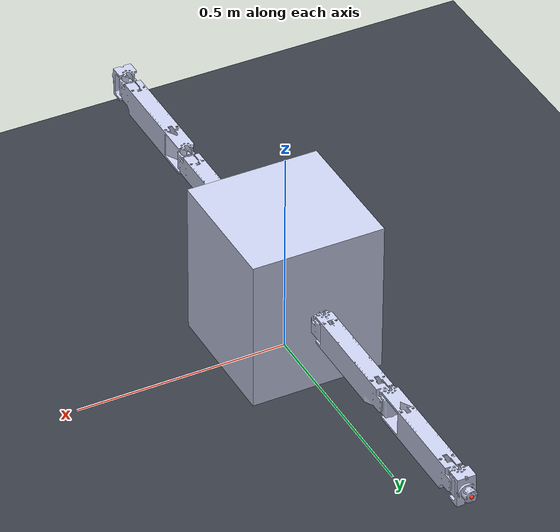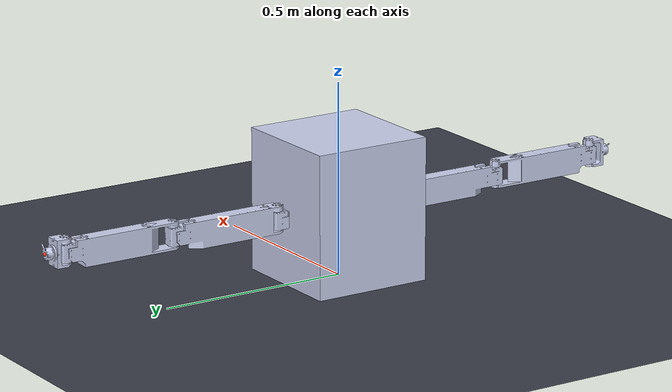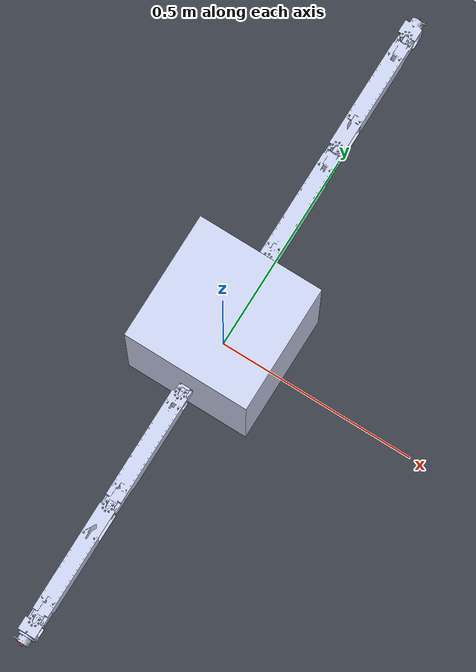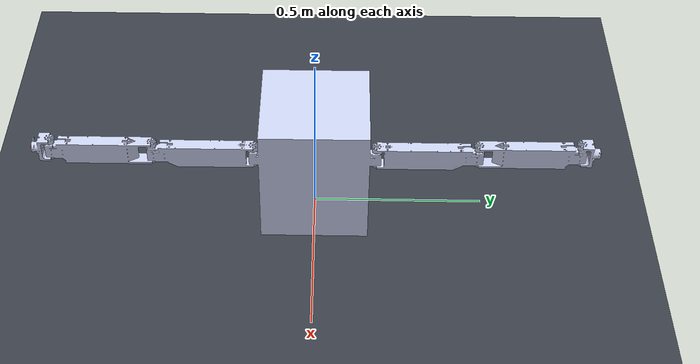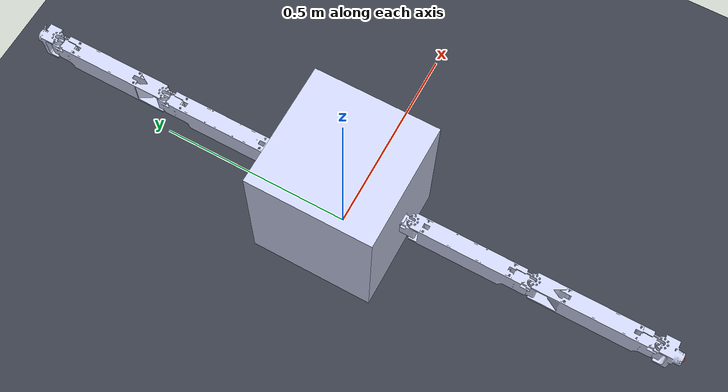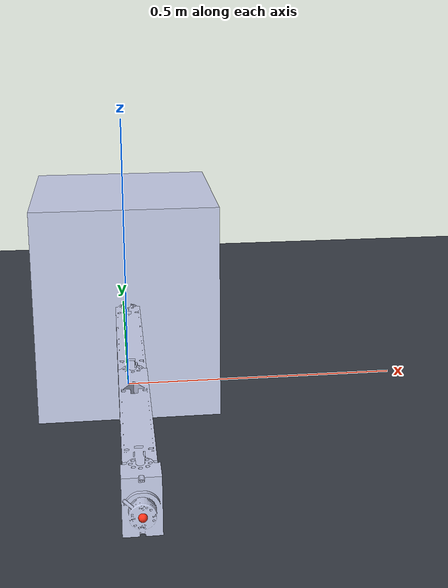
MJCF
<?xml version="1.0" encoding="utf-8"?>
<mujoco model="PFR_Arm2">
  <!-- Generated from PFR_Arm2.urdf. Lengths are in metres and angles in radians. -->
  <compiler angle="radian" meshdir="meshes" autolimits="true"/>
  <option timestep="0.002" gravity="0 0 -9.81" integrator="implicitfast"/>

  <visual>
    <headlight diffuse="0.6 0.6 0.6" ambient="0.3 0.3 0.3" specular="0.1 0.1 0.1"/>
    <rgba haze="0.15 0.25 0.35 1"/>
    <global azimuth="135" elevation="-20"/>
  </visual>

  <default>
    <joint type="hinge" axis="0 0 1" limited="false" damping="0.02" armature="0.001"/>
    <default class="visual">
      <geom type="mesh" material="arm_blue" group="2" contype="0" conaffinity="0"/>
    </default>
    <default class="collision">
      <geom type="mesh" group="3" rgba="0 0 0 0" friction="0.8 0.1 0.1"/>
    </default>
    <motor ctrllimited="false"/>
  </default>

  <asset>
    <material name="arm_blue" rgba="0.7921569 0.8196078 0.9333333 1"/>
    <material name="floor" rgba="0.22 0.24 0.28 1"/>

    <mesh name="base_link_mesh" file="base_link.STL"/>
    <mesh name="Joint1_R_mesh" file="Joint1_R.STL"/>
    <mesh name="Joint2_R_mesh" file="Joint2_R.STL"/>
    <mesh name="Joint3_R_mesh" file="Joint3_R.STL"/>
    <mesh name="Joint1_L_mesh" file="Joint1_L.STL"/>
    <mesh name="Joint2_L_mesh" file="Joint2_L.STL"/>
    <mesh name="Joint3_L_mesh" file="Joint3_L.STL"/>
  </asset>

  <worldbody>
    <light name="top" pos="0 0 2" dir="0 0 -1" diffuse="0.8 0.8 0.8"/>
    <geom name="floor" type="plane" size="1 1 0.05" material="floor"/>
    <camera name="overview" pos="1.5 -1.5 1.1" xyaxes="0.707107 0.707107 0 -0.286039 0.286039 0.91466"/>

    <!-- The URDF has no base joint, so base_link is fixed to the world. -->
    <body name="base_link">
      <inertial pos="2.67023784161503e-17 1.38748955932851e-17 0.185886916570362"
                mass="37.0077126301145"
                fullinertia="0.724473253004157 0.724407746640749 0.602836393608002 -1.86300210027573e-13 -5.02319701611592e-18 3.75870870342342e-21"/>
      <geom name="base_link_visual" class="visual" mesh="base_link_mesh"/>
      <geom name="base_link_collision" class="collision" mesh="base_link_mesh"/>

      <joint name="chaser_x"   type="slide" axis="1 0 0" damping="0" armature="0" limited="false"/>
      <joint name="chaser_y"   type="slide" axis="0 1 0" damping="0" armature="0" limited="false"/>
      <joint name="chaser_yaw" type="hinge" axis="0 0 1" damping="0" armature="0" limited="false"/>

      <body name="Joint1_R" pos="0 -0.18175 0.174">
        <inertial pos="-9.31857326154312e-11 -0.195378541069816 0.00672546665364099"
                  mass="0.410933607210843"
                  fullinertia="0.00175299289156333 0.000195601668420019 0.00169629776467482 -5.89177135842882e-12 1.3984615394458e-12 1.88142895656864e-05"/>
        <joint name="Joint1_R" limited="true" range="-1.57079632679 1.57079632679"/>
        <geom name="Joint1_R_visual" class="visual" mesh="Joint1_R_mesh"/>
        <geom name="Joint1_R_collision" class="collision" mesh="Joint1_R_mesh"/>

        <body name="Joint2_R" pos="0 -0.3 0.00950000000000006">
          <inertial pos="-8.81578836366647e-10 -0.205753132187302 0.00699863753540647"
                    mass="0.374093067317941"
                    fullinertia="0.00161509478193257 0.000190449958941573 0.00154274686402644 3.84970577116986e-11 9.48021605813476e-12 -4.24797754234991e-06"/>
          <joint name="Joint2_R" limited="true" range="-2.61799387799 2.61799387799"/>
          <geom name="Joint2_R_visual" class="visual" mesh="Joint2_R_mesh"/>
          <geom name="Joint2_R_collision" class="collision" mesh="Joint2_R_mesh"/>

          <body name="Joint3_R" pos="0 -0.3 0.00949999999999965">
            <inertial pos="-7.37750807914269e-05 -0.0311442464401741 0.00549599281689406"
                      mass="0.0882871164231278"
                      fullinertia="3.66676493897971e-05 4.02110494136869e-05 1.64829163884356e-05 -5.00700285155369e-08 1.10564509395472e-07 -1.3169841303705e-06"/>
            <joint name="Joint3_R" limited="true" range="-1.57079632679 1.57079632679"/>
            <geom name="Joint3_R_visual" class="visual" mesh="Joint3_R_mesh"/>
            <geom name="Joint3_R_collision" class="collision" mesh="Joint3_R_mesh"/>
            <site name="ee_site_R" type="sphere" pos="0 -0.0541 0.0045" size="0.005" rgba="1 0.2 0.1 1"/>
          </body>
        </body>
      </body>

      <body name="Joint1_L" pos="0 0.18175 0.174">
        <inertial pos="9.31857192870736e-11 0.195378541069816 0.00672546665364096"
                  mass="0.410933607210843"
                  fullinertia="0.00175299289156333 0.000195601668420019 0.00169629776467482 -5.89177121781119e-12 -1.39846151657399e-12 -1.88142895656863e-05"/>
        <joint name="Joint1_L" limited="true" range="-1.57079632679 1.57079632679"/>
        <geom name="Joint1_L_visual" class="visual" mesh="Joint1_L_mesh"/>
        <geom name="Joint1_L_collision" class="collision" mesh="Joint1_L_mesh"/>

        <body name="Joint2_L" pos="0 0.3 0.00950000000000006">
          <inertial pos="8.81578823250344e-10 0.205753132187302 0.00699863753540644"
                    mass="0.374093067317941"
                    fullinertia="0.00161509478193257 0.000190449958941573 0.00154274686402644 3.84970576996398e-11 -9.48021602314208e-12 4.2479775423505e-06"/>
          <joint name="Joint2_L" limited="true" range="-2.61799387799 2.61799387799"/>
          <geom name="Joint2_L_visual" class="visual" mesh="Joint2_L_mesh"/>
          <geom name="Joint2_L_collision" class="collision" mesh="Joint2_L_mesh"/>

          <body name="Joint3_L" pos="0 0.3 0.00949999999999965">
            <inertial pos="7.37750807914593e-05 0.0311442464401742 0.00549599281689406"
                      mass="0.0882871164231278"
                      fullinertia="3.66676493897971e-05 4.02110494136869e-05 1.64829163884356e-05 -5.00700285155311e-08 -1.1056450939546e-07 1.31698413037051e-06"/>
            <joint name="Joint3_L" limited="true" range="-1.57079632679 1.57079632679"/>
            <geom name="Joint3_L_visual" class="visual" mesh="Joint3_L_mesh"/>
            <geom name="Joint3_L_collision" class="collision" mesh="Joint3_L_mesh"/>
            <site name="ee_site_L" type="sphere" pos="0 0.0541 0.0045" size="0.005" rgba="1 0.2 0.1 1"/>
          </body>
        </body>
      </body>
    </body>
  </worldbody>

  <!-- Adjacent CAD meshes overlap around their revolute bearings by design. -->
  <contact>
    <exclude body1="base_link" body2="Joint1_R"/>
    <exclude body1="Joint1_R" body2="Joint2_R"/>
    <exclude body1="Joint2_R" body2="Joint3_R"/>
    <exclude body1="base_link" body2="Joint1_L"/>
    <exclude body1="Joint1_L" body2="Joint2_L"/>
    <exclude body1="Joint2_L" body2="Joint3_L"/>
  </contact>

  <actuator>
    <!-- Torque motors: ctrl is joint torque in N m because gear defaults to 1. -->
    <motor name="Joint1_R_motor" joint="Joint1_R"/>
    <motor name="Joint2_R_motor" joint="Joint2_R"/>
    <motor name="Joint3_R_motor" joint="Joint3_R"/>
    <motor name="Joint1_L_motor" joint="Joint1_L"/>
    <motor name="Joint2_L_motor" joint="Joint2_L"/>
    <motor name="Joint3_L_motor" joint="Joint3_L"/>
  </actuator>

  <keyframe>
    <key name="home" qpos="0 0 0 0 0 0" ctrl="0 0 0 0 0 0"/>
  </keyframe>
</mujoco>
